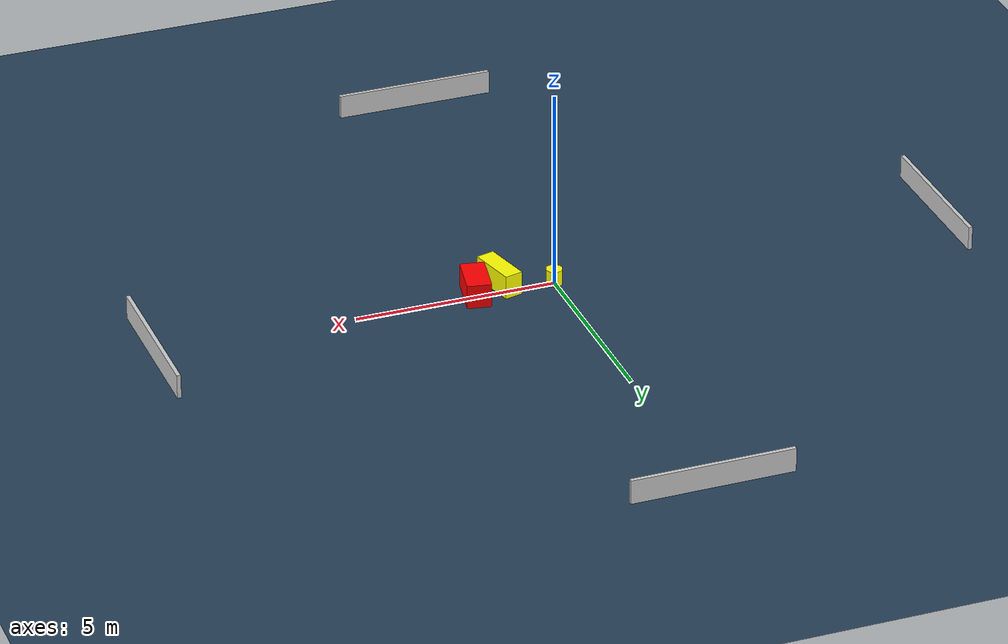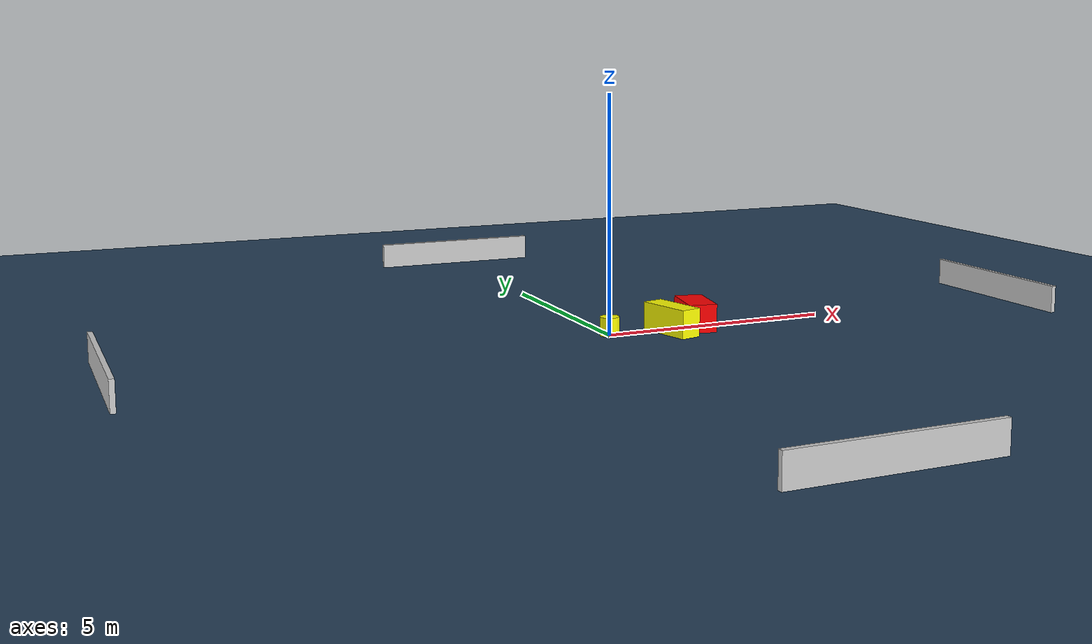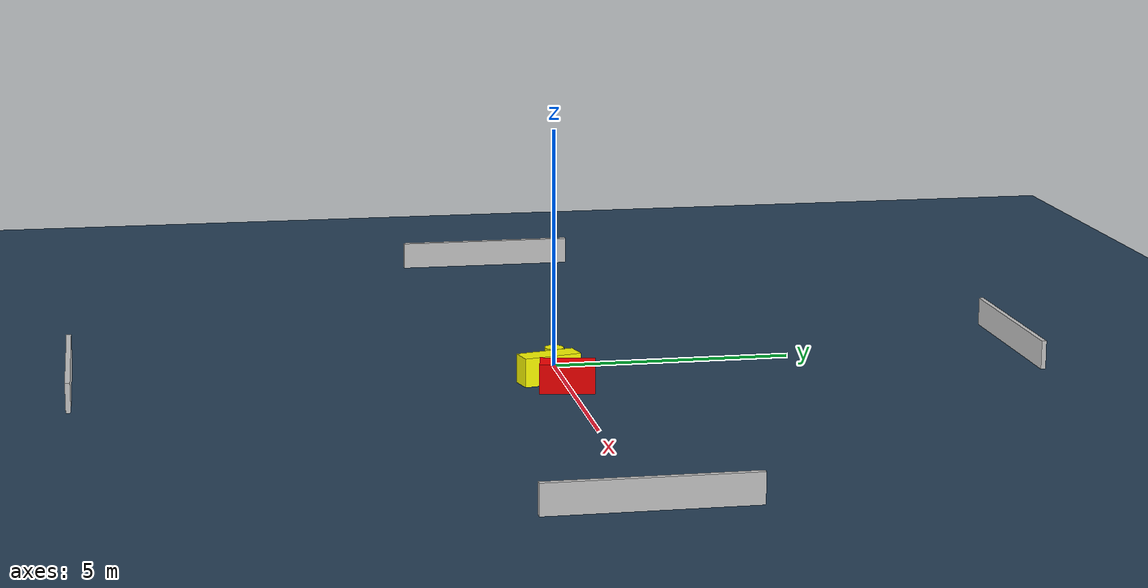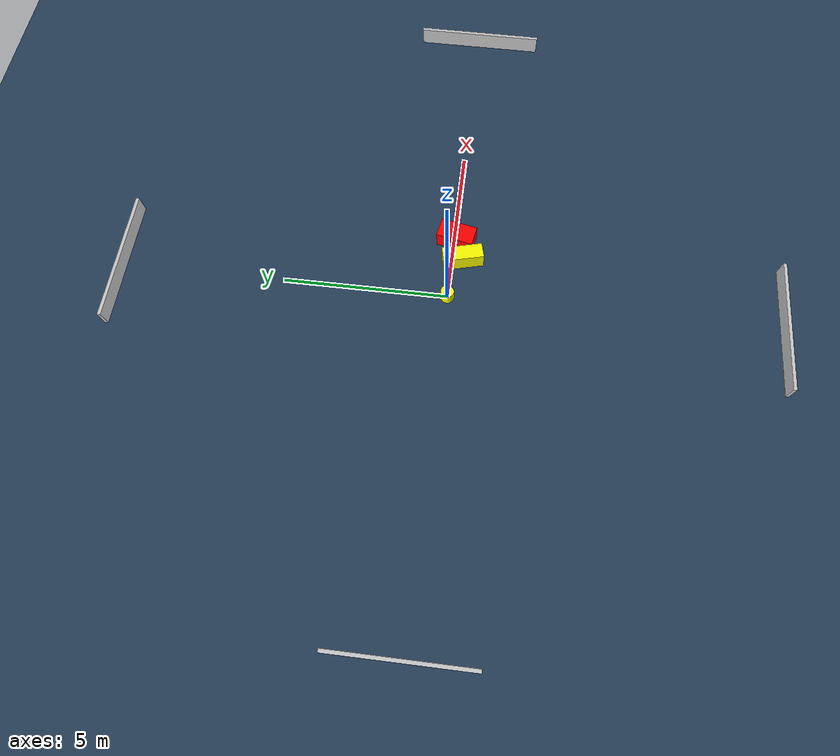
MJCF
<?xml version="1.0" ?>
<mujoco model="generated_environment">
  <option timestep="0.01" integrator="RK4" cone="elliptic"/>
  <default>
    <geom density="1"/>
  </default>
  <asset>
    <texture builtin="gradient" height="3072" name="skybox" rgb1="0.3 0.5 0.7" rgb2="0 0 0" type="skybox" width="512"/>
    <texture builtin="checker" height="300" name="groundplane" rgb1="0.2 0.3 0.4" rgb2="0.1 0.2 0.3" type="2d" width="300"/>
    <material name="groundplane" reflectance="0.2" texrepeat="5 5" texture="groundplane"/>
  </asset>
  <worldbody>
    <light dir="0 0 -1" directional="true" pos="0 0 1.5"/>
    <geom condim="3" friction="0.5 0.005 0.001" material="groundplane" name="floor" pos="0 0 0" size="0 0 0.05" type="plane"/>
    <body name="walls">
      <geom name="wall_1" condim="4" pos="-10.0 0.0 0.3" rgba="0.800000011920929 0.800000011920929 0.800000011920929 1.0" size="0.05 2.0 0.3" type="box"/>
      <geom name="wall_2" condim="4" pos="10.0 0.0 0.3" rgba="0.800000011920929 0.800000011920929 0.800000011920929 1.0" size="0.05 2.0 0.3" type="box"/>
      <geom name="wall_3" condim="4" pos="0.0 -10.0 0.3" rgba="0.800000011920929 0.800000011920929 0.800000011920929 1.0" size="2.0 0.05 0.3" type="box"/>
      <geom name="wall_4" condim="4" pos="0.0 10.0 0.3" rgba="0.800000011920929 0.800000011920929 0.800000011920929 1.0" size="2.0 0.05 0.3" type="box"/>
    </body>
    <body name="robot">
      <joint name="joint_x" type="slide" pos="0 0 0" axis="1 0 0"/>
      <joint name="joint_y" type="slide" pos="0 0 0" axis="0 1 0"/>
      <geom name="robot" type="cylinder" pos="0.0 0.0 0.2" size="0.2 0.2 0.0" mass="5.0" friction="1.0 0.005 0.0001" condim="4" rgba="1.0 1.0 0.0 1.0"/>
    </body>
    <body name="obstacle_1_movable">
      <geom name="obstacle_1_movable" condim="4" pos="1.2722998934962855 -0.3288950855067036 0.3" euler="0 0 13.855607977619089" friction="0.0 0.005 0.001" rgba="1.0 1.0 0.0 1.0" size="0.23032156401210202 0.6148318085931214 0.3" type="box" mass="0.1"/>
      <joint type="free"/>
    </body>
    <body name="obstacle_2_static">
      <geom name="obstacle_2_static" condim="4" pos="1.972979180178295 -0.06534506227514536 0.3" euler="0 0 259.10679056457707" friction="0.0 0.005 0.001" rgba="1.0 0.0 0.0 1.0" size="0.5621055420815262 0.29952507059590217 0.3" type="box"/>
    </body>
  </worldbody>
  <actuator>
    <motor name="actuator_x" joint="joint_x" gear="1" ctrlrange="-1 1"/>
    <motor name="actuator_y" joint="joint_y" gear="1" ctrlrange="-1 1"/>
  </actuator>
</mujoco>
